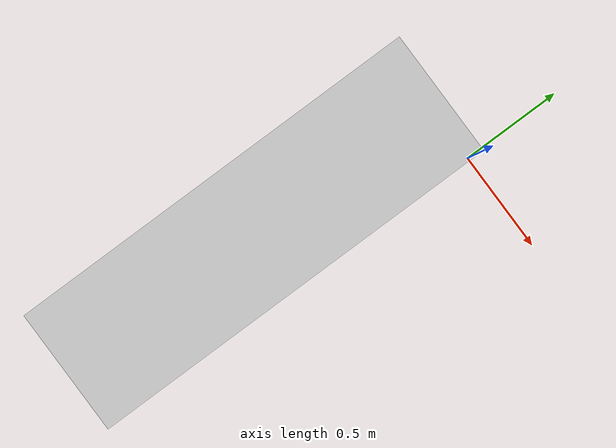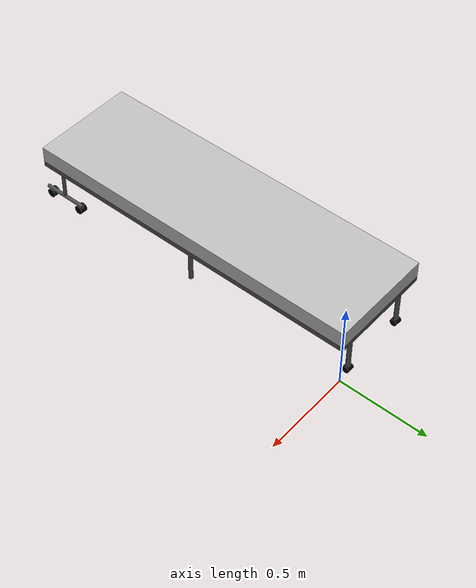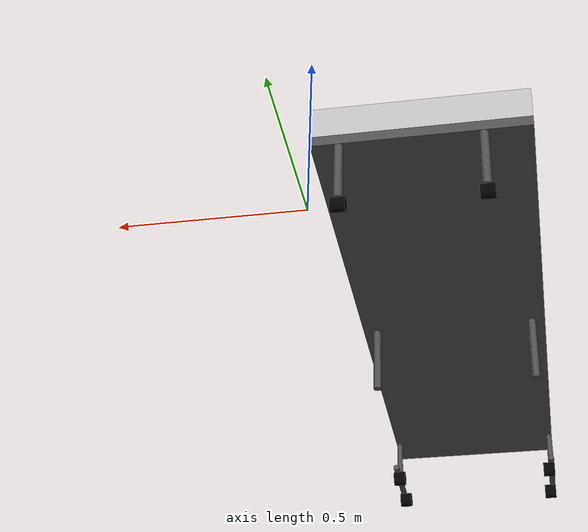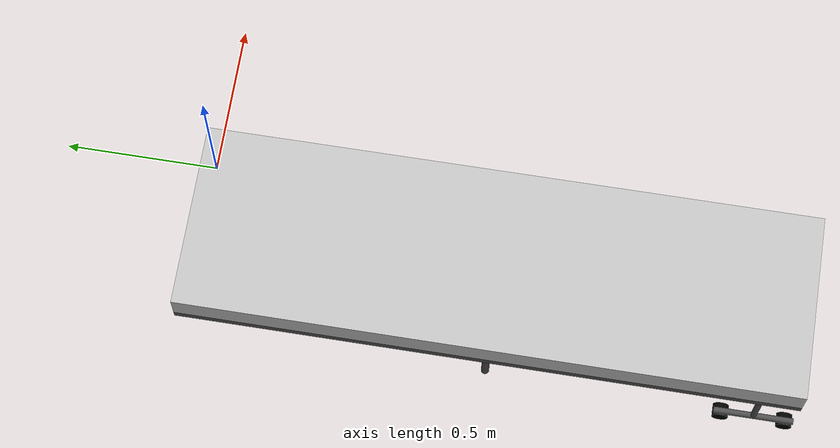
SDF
<?xml version="1.0" ?>
<sdf version="1.4">
    <model name='bed'>
      <link name='link'>
        <inertial>
          <mass>10.0</mass>
          <inertia>
            <ixx>1</ixx>
            <ixy>0</ixy>
            <ixz>0</ixz>
            <iyy>1</iyy>
            <iyz>0</iyz>
            <izz>1</izz>
          </inertia>
        </inertial>
        <visual name='cushion'>
          <pose>-0.295 -0.975 0.2875 0 0 0</pose>
          <geometry>
            <box>
              <size>0.59 1.95 0.095</size>
            </box>
          </geometry>
          <material>
            <name>cloth</name>
            <pbr>
              <metal>
                <albedo_map>model://base_materials/cloth/textures/cloth_black.png</albedo_map>
                <max_anisotropy>16</max_anisotropy>
                <scale>0.1 0.1</scale>
                <metalness>0</metalness>
              </metal>
            </pbr>
          </material>
        </visual>
        <collision name='collision_cushion'>
          <pose>-0.295 -0.975 0.2875 0 0 0</pose>
          <geometry>
            <box>
              <size>0.59 1.95 0.095</size>
            </box>
          </geometry>
          <max_contacts>10</max_contacts>
          <surface>
            <bounce/>
            <friction>
              <ode/>
            </friction>
            <contact>
              <ode/>
            </contact>
          </surface>
        </collision>
        <visual name='top_frame'>
          <pose>-0.295 -0.975 0.225 0 0 0</pose>
          <geometry>
            <box>
              <size>0.59 1.95 0.030</size>
            </box>
          </geometry>
          <material>
            <name>grey</name>
            <ambient>0.7 0.7 0.7 1</ambient>
            <diffuse>0.3 0.3 0.3 1</diffuse>
            <specular>0 0 0 1</specular>
            <emissive>0 0 0 1</emissive>
            <shading>gouraud</shading>
            <receive_shadows>on</receive_shadows>
          </material>
        </visual>
        <collision name='collision_top_frame'>
          <pose>-0.295 -0.975 0.225 0 0 0</pose>
          <geometry>
            <box>
              <size>0.59 1.95 0.030</size>
            </box>
          </geometry>
          <max_contacts>10</max_contacts>
          <surface>
            <bounce/>
            <friction>
              <ode/>
            </friction>
            <contact>
              <ode/>
            </contact>
          </surface>
        </collision>
        <visual name='right_front_pole'>
          <pose>-0.075 -0.0125 0.125 0 0 0</pose>
          <geometry>
            <cylinder>
              <radius>0.0125</radius>
              <length>0.17</length>
            </cylinder>
          </geometry>
          <material>
            <name>grey</name>
            <ambient>0.7 0.7 0.7 1</ambient>
            <diffuse>0.3 0.3 0.3 1</diffuse>
            <specular>0 0 0 1</specular>
            <emissive>0 0 0 1</emissive>
            <shading>gouraud</shading>
            <receive_shadows>on</receive_shadows>
          </material>
        </visual>
        <collision name='collision_right_front_pole'>
          <pose>-0.075 -0.0125 0.125 0 0 0</pose>
          <geometry>
            <cylinder>
              <radius>0.0125</radius>
              <length>0.17</length>
            </cylinder>
          </geometry>
          <max_contacts>10</max_contacts>
          <surface>
            <bounce/>
            <friction>
              <ode/>
            </friction>
            <contact>
              <ode/>
            </contact>
          </surface>
        </collision>
        <visual name='right_front_caster'>
          <pose>-0.075 -0.0125 0.02 0 1.57 0</pose>
          <geometry>
            <cylinder>
              <radius>0.02</radius>
              <length>0.04</length>
            </cylinder>
          </geometry>
          <material>
            <!-- Black -->
            <ambient>0.0 0.0 0.0 1.0</ambient>
            <diffuse>0.0 0.0 0.0 1.0</diffuse>
            <specular>0.1 0.1 0.1 1.0</specular>
            <shininess>5.0</shininess>
          </material>
        </visual>
        <collision name='collision_right_front_caster'>
          <pose>-0.075 -0.0125 0.02 0 1.57 0</pose>
          <geometry>
            <cylinder>
              <radius>0.02</radius>
              <length>0.04</length>
            </cylinder>
          </geometry>
          <max_contacts>10</max_contacts>
          <surface>
            <bounce/>
            <friction>
              <ode/>
            </friction>
            <contact>
              <ode/>
            </contact>
          </surface>
        </collision>
        <visual name='right_back_pole'>
          <pose>-0.460 -0.0125 0.125 0 0 0</pose>
          <geometry>
            <cylinder>
              <radius>0.0125</radius>
              <length>0.17</length>
            </cylinder>
          </geometry>
          <material>
            <!-- hsr_color/grey -->
            <name>grey</name>
            <ambient>0.7 0.7 0.7 1</ambient>
            <diffuse>0.3 0.3 0.3 1</diffuse>
            <specular>0 0 0 1</specular>
            <emissive>0 0 0 1</emissive>
            <shading>gouraud</shading>
            <receive_shadows>on</receive_shadows>
          </material>
        </visual>
        <collision name='collision_right_back_pole'>
          <pose>-0.460 -0.0125 0.125 0 0 0</pose>
          <geometry>
            <cylinder>
              <radius>0.0125</radius>
              <length>0.17</length>
            </cylinder>
          </geometry>
          <max_contacts>10</max_contacts>
          <surface>
            <bounce/>
            <friction>
              <ode/>
            </friction>
            <contact>
              <ode/>
            </contact>
          </surface>
        </collision>
        <visual name='right_back_caster'>
          <pose>-0.460 -0.0125 0.02 0 1.57 0</pose>
          <geometry>
            <cylinder>
              <radius>0.02</radius>
              <length>0.04</length>
            </cylinder>
          </geometry>
          <material>
            <!-- Black -->
            <ambient>0.0 0.0 0.0 1.0</ambient>
            <diffuse>0.0 0.0 0.0 1.0</diffuse>
            <specular>0.1 0.1 0.1 1.0</specular>
            <shininess>5.0</shininess>
          </material>
        </visual>
        <collision name='collision_back_front_caster'>
          <pose>-0.460 -0.0125 0.02 0 1.57 0</pose>
          <geometry>
            <cylinder>
              <radius>0.02</radius>
              <length>0.04</length>
            </cylinder>
          </geometry>
          <max_contacts>10</max_contacts>
          <surface>
            <bounce/>
            <friction>
              <ode/>
            </friction>
            <contact>
              <ode/>
            </contact>
          </surface>
        </collision>
        <visual name='center_front_pole'>
          <pose>-0.0425 -0.975 0.105 0 0 0</pose>
          <geometry>
            <cylinder>
              <radius>0.0125</radius>
              <length>0.21</length>
            </cylinder>
          </geometry>
          <material>
            <!-- hsr_color/grey -->
            <name>grey</name>
            <ambient>0.7 0.7 0.7 1</ambient>
            <diffuse>0.3 0.3 0.3 1</diffuse>
            <specular>0 0 0 1</specular>
            <emissive>0 0 0 1</emissive>
            <shading>gouraud</shading>
            <receive_shadows>on</receive_shadows>
          </material>
        </visual>
        <collision name='collision_center_front_pole'>
          <pose>-0.0425 -0.975 0.105 0 0 0</pose>
          <geometry>
            <cylinder>
              <radius>0.0125</radius>
              <length>0.17</length>
            </cylinder>
          </geometry>
          <max_contacts>10</max_contacts>
          <surface>
            <bounce/>
            <friction>
              <ode/>
            </friction>
            <contact>
              <ode/>
            </contact>
          </surface>
        </collision>
        <visual name='center_back_pole'>
          <pose>-0.5475 -0.975 0.105 0 0 0</pose>
          <geometry>
            <cylinder>
              <radius>0.0125</radius>
              <length>0.21</length>
            </cylinder>
          </geometry>
          <material>
            <!-- hsr_color/grey -->
            <name>grey</name>
            <ambient>0.7 0.7 0.7 1</ambient>
            <diffuse>0.3 0.3 0.3 1</diffuse>
            <specular>0 0 0 1</specular>
            <emissive>0 0 0 1</emissive>
            <shading>gouraud</shading>
            <receive_shadows>on</receive_shadows>
          </material>
        </visual>
        <collision name='collision_center_back_pole'>
          <pose>-0.5475 -0.975 0.105 0 0 0</pose>
          <geometry>
            <cylinder>
              <radius>0.0125</radius>
              <length>0.17</length>
            </cylinder>
          </geometry>
          <max_contacts>10</max_contacts>
          <surface>
            <bounce/>
            <friction>
              <ode/>
            </friction>
            <contact>
              <ode/>
            </contact>
          </surface>
        </collision>
        <visual name='left_front_horizon_pole'>
          <pose>-0.01 -1.825 0.06 1.57 0 0</pose>
          <geometry>
            <cylinder>
              <radius>0.01</radius>
              <length>0.25</length>
            </cylinder>
          </geometry>
          <material>
            <!-- hsr_color/grey -->
            <name>grey</name>
            <ambient>0.7 0.7 0.7 1</ambient>
            <diffuse>0.3 0.3 0.3 1</diffuse>
            <specular>0 0 0 1</specular>
            <emissive>0 0 0 1</emissive>
            <shading>gouraud</shading>
            <receive_shadows>on</receive_shadows>
          </material>
        </visual>
        <collision name='collision_left_front_horizon_pole'>
          <pose>-0.01 -1.825 0.06 1.57 0 0</pose>
          <geometry>
            <cylinder>
              <radius>0.01</radius>
              <length>0.25</length>
            </cylinder>
          </geometry>
          <max_contacts>10</max_contacts>
          <surface>
            <bounce/>
            <friction>
              <ode/>
            </friction>
            <contact>
              <ode/>
            </contact>
          </surface>
        </collision>
        <visual name='left_front_vertical_pole'>
          <pose>-0.01 -1.825 0.14 0 0 0</pose>
          <geometry>
            <cylinder>
              <radius>0.01</radius>
              <length>0.14</length>
            </cylinder>
          </geometry>
          <material>
            <!-- hsr_color/grey -->
            <name>grey</name>
            <ambient>0.7 0.7 0.7 1</ambient>
            <diffuse>0.3 0.3 0.3 1</diffuse>
            <specular>0 0 0 1</specular>
            <emissive>0 0 0 1</emissive>
            <shading>gouraud</shading>
            <receive_shadows>on</receive_shadows>
          </material>
        </visual>
        <collision name='collision_left_front_vertical_pole'>
          <pose>-0.01 -1.825 0.14 0 0 0</pose>
          <geometry>
            <cylinder>
              <radius>0.01</radius>
              <length>0.14</length>
            </cylinder>
          </geometry>
          <max_contacts>10</max_contacts>
          <surface>
            <bounce/>
            <friction>
              <ode/>
            </friction>
            <contact>
              <ode/>
            </contact>
          </surface>
        </collision>
        <visual name='left_front_caster_r'>
          <pose>-0.02 -1.725 0.025 0 1.57 0</pose>
          <geometry>
            <cylinder>
              <radius>0.025</radius>
              <length>0.04</length>
            </cylinder>
          </geometry>
          <material>
            <!-- Black -->
            <ambient>0.0 0.0 0.0 1.0</ambient>
            <diffuse>0.0 0.0 0.0 1.0</diffuse>
            <specular>0.1 0.1 0.1 1.0</specular>
            <shininess>5.0</shininess>
          </material>
        </visual>
        <collision name='collision_left_front_caster_r'>
          <pose>-0.02 -1.725 0.025 0 1.57 0</pose>
          <geometry>
            <cylinder>
              <radius>0.025</radius>
              <length>0.04</length>
            </cylinder>
          </geometry>
          <max_contacts>10</max_contacts>
          <surface>
            <bounce/>
            <friction>
              <ode/>
            </friction>
            <contact>
              <ode/>
            </contact>
          </surface>
        </collision>
        <visual name='left_front_caster_l'>
          <pose>-0.02 -1.925 0.025 0 1.57 0</pose>
          <geometry>
            <cylinder>
              <radius>0.025</radius>
              <length>0.04</length>
            </cylinder>
          </geometry>
          <material>
            <!-- Black -->
            <ambient>0.0 0.0 0.0 1.0</ambient>
            <diffuse>0.0 0.0 0.0 1.0</diffuse>
            <specular>0.1 0.1 0.1 1.0</specular>
            <shininess>5.0</shininess>
          </material>
        </visual>
        <collision name='collision_left_front_caster_l'>
          <pose>-0.02 -1.925 0.025 0 1.57 0</pose>
          <geometry>
            <cylinder>
              <radius>0.025</radius>
              <length>0.04</length>
            </cylinder>
          </geometry>
          <max_contacts>10</max_contacts>
          <surface>
            <bounce/>
            <friction>
              <ode/>
            </friction>
            <contact>
              <ode/>
            </contact>
          </surface>
        </collision>
        <visual name='left_back_horizon_pole'>
          <pose>-0.58 -1.825 0.06 1.57 0 0</pose>
          <geometry>
            <cylinder>
              <radius>0.01</radius>
              <length>0.25</length>
            </cylinder>
          </geometry>
          <material>
            <!-- hsr_color/grey -->
            <name>grey</name>
            <ambient>0.7 0.7 0.7 1</ambient>
            <diffuse>0.3 0.3 0.3 1</diffuse>
            <specular>0 0 0 1</specular>
            <emissive>0 0 0 1</emissive>
            <shading>gouraud</shading>
            <receive_shadows>on</receive_shadows>
          </material>
        </visual>
        <collision name='collision_left_back_horizon_pole'>
          <pose>-0.58 -1.825 0.06 1.57 0 0</pose>
          <geometry>
            <cylinder>
              <radius>0.01</radius>
              <length>0.25</length>
            </cylinder>
          </geometry>
          <max_contacts>10</max_contacts>
          <surface>
            <bounce/>
            <friction>
              <ode/>
            </friction>
            <contact>
              <ode/>
            </contact>
          </surface>
        </collision>
        <visual name='left_back_vertical_pole'>
          <pose>-0.58 -1.825 0.14 0 0 0</pose>
          <geometry>
            <cylinder>
              <radius>0.01</radius>
              <length>0.14</length>
            </cylinder>
          </geometry>
          <material>
            <!-- hsr_color/grey -->
            <name>grey</name>
            <ambient>0.7 0.7 0.7 1</ambient>
            <diffuse>0.3 0.3 0.3 1</diffuse>
            <specular>0 0 0 1</specular>
            <emissive>0 0 0 1</emissive>
            <shading>gouraud</shading>
            <receive_shadows>on</receive_shadows>
          </material>
        </visual>
        <collision name='collision_left_back_vertical_pole'>
          <pose>-0.58 -1.825 0.14 0 0 0</pose>
          <geometry>
            <cylinder>
              <radius>0.01</radius>
              <length>0.14</length>
            </cylinder>
          </geometry>
          <max_contacts>10</max_contacts>
          <surface>
            <bounce/>
            <friction>
              <ode/>
            </friction>
            <contact>
              <ode/>
            </contact>
          </surface>
        </collision>
        <visual name='left_back_caster_r'>
          <pose>-0.57 -1.725 0.025 0 1.57 0</pose>
          <geometry>
            <cylinder>
              <radius>0.025</radius>
              <length>0.04</length>
            </cylinder>
          </geometry>
          <material>
            <!-- Black -->
            <ambient>0.0 0.0 0.0 1.0</ambient>
            <diffuse>0.0 0.0 0.0 1.0</diffuse>
            <specular>0.1 0.1 0.1 1.0</specular>
            <shininess>5.0</shininess>
          </material>
        </visual>
        <collision name='collision_left_back_caster_r'>
          <pose>-0.57 -1.725 0.025 0 1.57 0</pose>
          <geometry>
            <cylinder>
              <radius>0.025</radius>
              <length>0.04</length>
            </cylinder>
          </geometry>
          <max_contacts>10</max_contacts>
          <surface>
            <bounce/>
            <friction>
              <ode/>
            </friction>
            <contact>
              <ode/>
            </contact>
          </surface>
        </collision>
        <visual name='left_back_caster_l'>
          <pose>-0.57 -1.925 0.025 0 1.57 0</pose>
          <geometry>
            <cylinder>
              <radius>0.025</radius>
              <length>0.04</length>
            </cylinder>
          </geometry>
          <material>
            <!-- Black -->
            <ambient>0.0 0.0 0.0 1.0</ambient>
            <diffuse>0.0 0.0 0.0 1.0</diffuse>
            <specular>0.1 0.1 0.1 1.0</specular>
            <shininess>5.0</shininess>
          </material>
        </visual>
        <collision name='collision_left_back_caster_l'>
          <pose>-0.57 -1.925 0.025 0 1.57 0</pose>
          <geometry>
            <cylinder>
              <radius>0.025</radius>
              <length>0.04</length>
            </cylinder>
          </geometry>
          <max_contacts>10</max_contacts>
          <surface>
            <bounce/>
            <friction>
              <ode/>
            </friction>
            <contact>
              <ode/>
            </contact>
          </surface>
        </collision>
        <velocity_decay>
          <linear>0</linear>
          <angular>0</angular>
        </velocity_decay>
        <self_collide>0</self_collide>
        <kinematic>0</kinematic>
        <gravity>1</gravity>
      </link>
      <static>1</static>
    </model>
</sdf>
